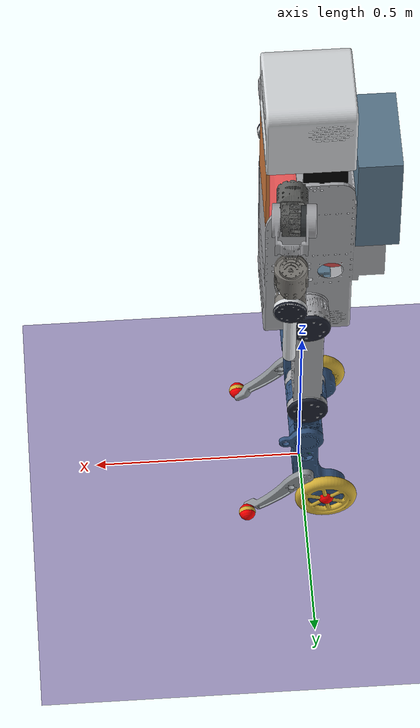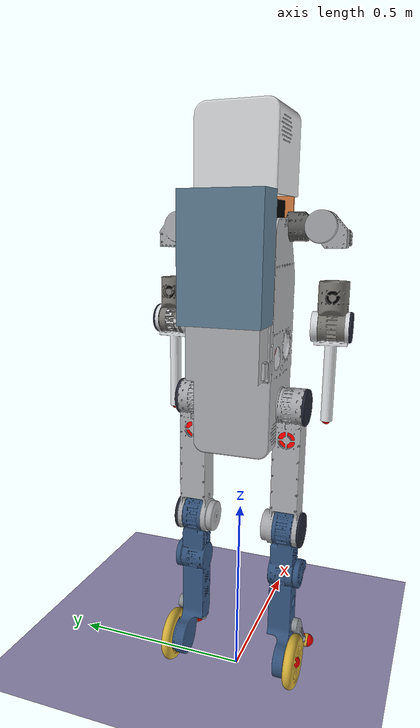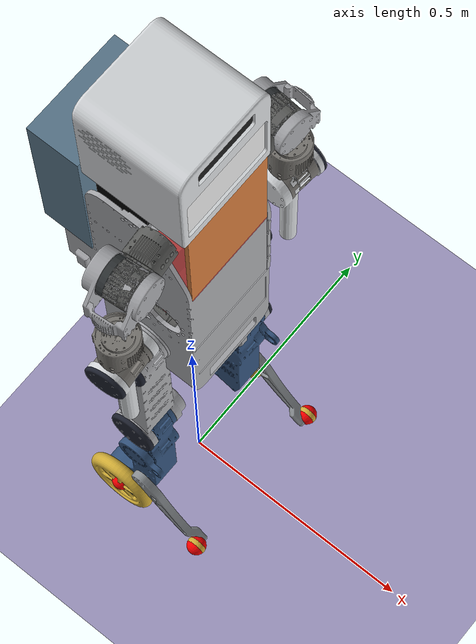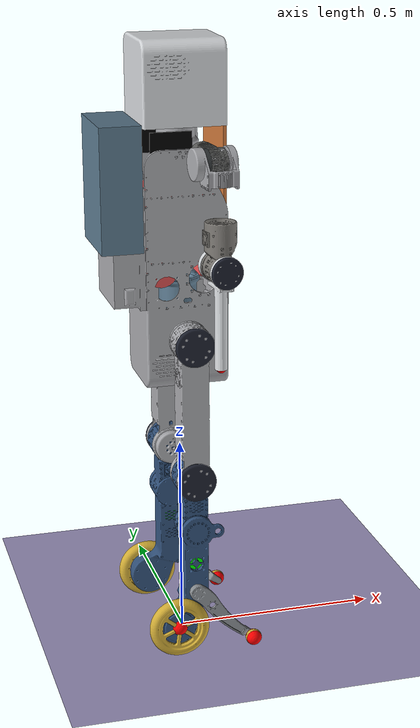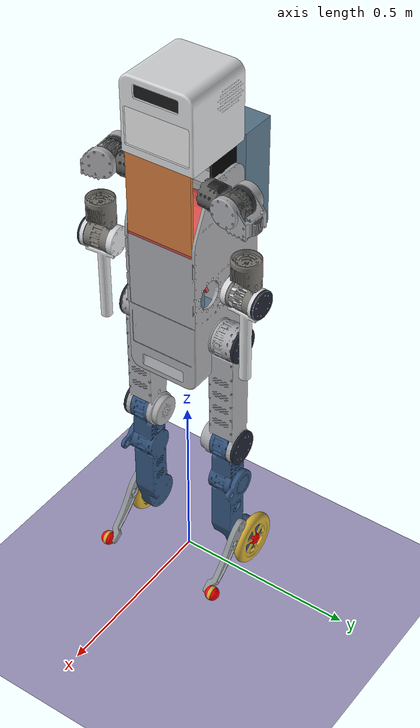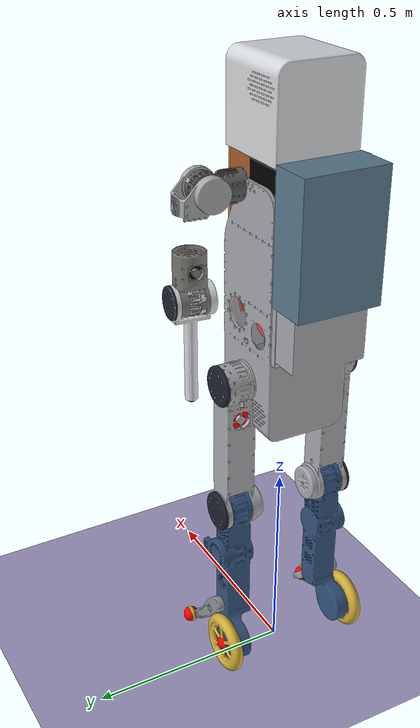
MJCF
<mujoco model="KIST MAHRU-WL with Battery">		<!-- 파일 이름 -->
	<compiler angle="radian" autolimits="true" meshdir="Meshes" texturedir="PNG"/>		<!-- xml 기본 설정 -->
	<option timestep="0.001" gravity="0 0 -9.81" tolerance="1e-08" cone="elliptic" jacobian="dense" solver="Newton"
					integrator="implicit" iterations="30"/>		<!-- mujoco sim 설정 -->
	<option>
		<flag override="enable" gravity="enable"/>
	</option>

	<visual>
		<global fovy="45" linewidth="2" glow="0.3"/>
		<quality shadowsize="4096" numslices="48"/>
		<map stiffness="50" stiffnessrot="100"/>
		<scale forcewidth="0.03" contactwidth="0.15" contactheight="0.1" connect="0.1" com="0.05" jointlength="0.25" jointwidth="0.05"
					 actuatorlength="0.5" actuatorwidth="0.3" framelength="1" framewidth="0.03"/>
		<rgba haze="0.6 0.8 0.9 1" force="1 0 0 0.5" com="0 0 1 1"/>
	</visual>

	<default>
		<geom contype="1" conaffinity="1" condim="3" material="MatLink"/>
		<joint limited="false" damping="2" armature="0.1" stiffness="0" frictionloss="0.2"/>
		<motor gear="1 0 0 0 0 0" ctrllimited="false" ctrlrange="-100 100"/>
	</default>

	<asset>
		<mesh name="Pelvis" file="base_link.STL"/>
		<mesh name="Torso" file="TOP.STL"/>
		<mesh name="Head" file="Head.STL"/>
		<mesh name="RA1" file="RA1.STL"/>
		<mesh name="RA2" file="RA2.STL"/>
		<mesh name="RA3" file="RA3.STL"/>
		<mesh name="RA4" file="RA4.STL"/>
		<mesh name="LA1" file="LA1.STL"/>
		<mesh name="LA2" file="LA2.STL"/>
		<mesh name="LA3" file="LA3.STL"/>
		<mesh name="LA4" file="LA4.STL"/>
		<mesh name="RL1" file="RL1.STL"/>
		<mesh name="RL2" file="RL2.STL"/>
		<mesh name="RL3" file="RL3.STL"/>
		<mesh name="RL4" file="RL4.STL"/>
		<mesh name="RW" file="RW.STL"/>
		<mesh name="LL1" file="LL1.STL"/>
		<mesh name="LL2" file="LL2.STL"/>
		<mesh name="LL3" file="LL3.STL"/>
		<mesh name="LL4" file="LL4.STL"/>
		<mesh name="LW" file="LW.STL"/>
		<mesh name="ToeWheel" file="ToeWheel.STL"/>
		<mesh name="AMCover" file="Cover.STL" scale="0.8 0.805 0.805"/>
		<mesh name="LMCover" file="Cover.STL" scale="1.005 1.005 1.005"/>

		<texture name="sky" type="skybox" builtin="gradient" width="512" height="512" rgb1="1 1 1" rgb2="0.6 0.8 1"/>
		<texture name="picdisp"  type="2d" builtin="none"    file="Face02.png"/>
		<texture name="picfloor" type="2d" builtin="none"    file="Marble-02.png"/>
		<texture name="texplane" type="2d" builtin="checker" width="512" height="512"
						 rgb1="0.8555 0.8516 0.7422" rgb2="0.4141 0.3516 0.8008" mark="edge" markrgb="1 1 1"/>

		<material name="MatGnd"   reflectance="0" specular="1" shininess="1" rgba="0 0.4 0.5 1"/>
		<material name="MatDisp"  texture="picdisp" emission="0.3" reflectance="0.1" shininess="0.5"/>
		<material name="MatLink"  reflectance="0.5" specular="1" shininess="0.3" rgba="0.5 0.5 0.5 1"/>
		<material name="MatFloor" texture="picfloor" reflectance="0.05" shininess="1" texrepeat="1 1" texuniform="true"/>
		<material name="MatPlane" texture="texplane" reflectance="0" texrepeat="1 1" texuniform="true"/>
	</asset>

	<worldbody>
		<!-- Light-->
		<light directional="true" pos=" 5 -5 5" dir="-0.5  0.5 -1" diffuse="0.3 0.3 0.3" specular="0.0 0.0 0.0" castshadow="false"/>
		<light directional="true" pos=" 5  5 5" dir="-0.5 -0.5 -1" diffuse="0.3 0.3 0.3" specular="0.0 0.0 0.0" castshadow="false"/>
		<light directional="true" pos="-5  5 5" dir=" 0.5 -0.5 -1" diffuse="0.3 0.3 0.3" specular="0.0 0.0 0.0" castshadow="false"/>
		<light directional="true" pos="-5 -5 5" dir=" 0.5  0.5 -1" diffuse="0.3 0.3 0.3" specular="0.0 0.0 0.0" castshadow="false"/>

		<!-- Ground -->
		<geom name="Ground" type="plane" pos="0 0 0" material="MatPlane" size="0 0 1" condim="3"/>

		<!-- BASE : Pelvis -->
		<body name="Pelvis" pos="0 0 0.8">
		<freejoint name ="Floating-Base"/>
			<inertial pos="-0.00067614 -5.55e-05 0.0714295" quat="0.706127 -0.0205059 -0.0182855 0.707552"
								mass="2.28058" diaginertia="0.00672353 0.00634586 0.00411024"/>
			<geom name="Pelvis" type="mesh" mesh="Pelvis" rgba="0.3555 0.4727 0.5547 1"/>	<!-- Titanium Blue -->

			<!-- UpperBody : Torso -->
			<body name="Torso" pos="0 0 0.15" euler="3.1416 0 0">
				<joint name="Torso_Y" pos="0 0 0" axis="0 0 1" range="-0.5 0.5" limited="true"/>
				<inertial pos="-0.0700627 -0.00059468 -0.24363" quat="0.697837 -0.107366 -0.0994596 0.701144"
									mass="14.6588" diaginertia="0.26711 0.217134 0.153951"/>
				<geom name="Torso" type="mesh" mesh="Torso" rgba="0.6563 0.6602 0.6758 1"/>	<!-- Metallic Silver -->
				<geom name="Head" type="mesh" mesh="Head" pos="0 0 -0.0022" rgba="0.8438 0.8555 0.8672 1"/>	<!-- Chrome Silver -->
				<geom name="Camera" type="box" pos="0.094 0 -0.526" euler="0 1.57 0" size="0.02 0.08 0.001" rgba="0.1 0.1 0.1 1"/>
				<geom name="Face" type="box" pos="0.094 0 -0.429" euler="0 1.57 -1.57" size="0.095 0.055 0.001" rgba="0.9 0.9 0.9 1" material="MatDisp"/>
				<geom name="Battery" type="box" pos="-0.154 0 -0.22" size="0.05 0.101 0.15" rgba="0.3555 0.4727 0.5547 1"/>	<!-- Titanium Blue -->
				<geom name="FU" type="box" pos="0.09505 0 -0.253" size="0.004 0.0921 0.11" rgba="0.8164 0.4727 0.2305 1"/>	<!-- Metallic Copper -->
				<geom name="FL" type="box" pos="0.062 0 -0.057" euler="0 -0.462 0" size="0.004 0.0925 0.06" rgba="0.8555 0.3047 0.3047 1"/>	<!-- Steel Red -->
				<geom type="cylinder" pos="0.009 0 -0.143" euler="1.57 0 0" size="0.09005 0.0925" rgba="0.8555 0.3047 0.3047 1"/>	<!-- Steel Red -->
				<geom name="BL" type="box" pos="-0.094 0 -0.05" size="0.005 0.0925 0.03" rgba="0.8555 0.3047 0.3047 1"/>	<!-- Steel Red -->
				<geom type="cylinder" pos="-0.06 0 -0.02" euler="1.57 0 0" size="0.039 0.0925" rgba="0.8555 0.3047 0.3047 1"/>	<!-- Steel Red -->
				<geom name="LB_Fan" type="box" pos="-0.033 -0.087 -0.31" size="0.05 0.002 0.04" rgba="0 0 0 1"/>
				<geom name="RB_Fan" type="box" pos="-0.033  0.087 -0.31" size="0.05 0.002 0.04" rgba="0 0 0 1"/>

				<!-- Right Arm -->
				<body name="RA1" pos="0.047556 0.17703 -0.29" euler="-1.570796 0.087266 0">
					<joint name="RArm_J1" pos="0 0 0" axis="0 0 1" limited="true" range="-3.14 3.14"/>
					<inertial pos="-0.00253009 0.00062386 -0.014022" quat="0.70804 0.0165299 0.040664 0.704807"
										mass="1.33852" diaginertia="0.00206694 0.00181764 0.00115994"/>
					<geom type="mesh" mesh="RA1" rgba="0.3594 0.3633 0.3555 1"/>	<!-- Gunmetal -->

					<body name="RA2" pos="0 0 0" euler="3.141592 1.570796 0">
						<joint name="RArm_J2" pos="0 0 0" axis="0 0 1" limited="true" range="-1.57 1.57"/>
						<inertial pos="0.0323144 0.0807497 0.00105962" quat="0.67607 0.680674 0.250737 -0.129394"
											mass="1.32899" diaginertia="0.00335677 0.00320867 0.00125121"/>
						<geom type="mesh" mesh="RA2" rgba="0.6563 0.6602 0.6758 1"/>	<!-- Metallic Silver -->
						<geom type="cylinder" pos="0 0 -0.025" size="0.035 0.006" rgba="0.1914 0.2070 0.2148 1"/>	<!-- Gunmetal Gray -->

						<body name="RA3" pos="0.035 0.12 0" euler="-1.570796 0 -1.570796">
							<joint name="RArm_J3" pos="0 0 0" axis="0 0 1" limited="true" range="-1 1"/>
							<inertial pos="6.983e-05 -0.00139846 0.100248" quat="0.999889 -0.0111503 0.00808679 0.0056701"
												mass="1.41642" diaginertia="0.00287566 0.00258677 0.00129787"/>
							<geom type="mesh" mesh="RA3" rgba="0.4766 0.4648 0.4453 1"/>	<!-- Metallic Titanium -->
							<geom name="RE_Fan" type="box" pos="-0.026 0 0.045" size="0.002 0.018 0.018" rgba="0 0 0 1"/>

							<body name="RA4" pos="0 0 0.12" euler="1.570796 0 0">
								<joint name="RArm_J4" pos="0 0 0" axis="0 0 1" limited="true" range="-1.8 0.05"/>
								<inertial pos="-0.00053779 0.0658718 0.00614697" quat="0.676625 0.734676 0.038169 -0.0311954"
													mass="0.325331" diaginertia="0.00221643 0.00204299 0.000338785"/>
								<geom name="RA" type="mesh" mesh="RA4" rgba="0.8438 0.8555 0.8672 1"/>	<!-- Chrome Silver -->
								<geom name="RECover" type="mesh" mesh="AMCover" pos="0 0 -0.041" euler="0 1.57 0" rgba="0.1133 0.1289 0.1797 1"/>
								<site name="RArm_EE" type="sphere" pos="0 0.24 0" size="0.012" rgba="1 0 0 1"/>
							</body>
						</body>
					</body>
				</body>	<!-- End of Right Arm -->

				<!-- Left Arm -->
				<body name="LA1" pos="0.047556 -0.17703 -0.29" euler="1.570796 0.087266 0">
					<joint name="LArm_J1" pos="0 0 0" axis="0 0 1" limited="true" range="-3.14 3.14"/>
					<inertial pos="-0.00253009 -0.00062386 -0.014022" quat="0.701945 0.0406307 0.0163936 0.710882"
										mass="1.33852" diaginertia="0.00206697 0.0018176 0.00115995"/>
					<geom type="mesh" mesh="LA1" rgba="0.3594 0.3633 0.3555 1"/>	<!-- Gunmetal -->

					<body name="LA2" pos="0 0 0" euler="0 1.570796 0">
						<joint name="LArm_J2" pos="0 0 0" axis="0 0 1" limited="true" range="-1.57 1.57"/>
						<inertial pos="-0.0323144 0.0807497 0.00105962" quat="0.67607 0.680674 -0.250737 0.129394"
											mass="1.32899" diaginertia="0.00335677 0.00320867 0.00125121"/>
						<geom type="mesh" mesh="LA2" rgba="0.6563 0.6602 0.6758 1"/>	<!-- Metallic Silver -->
						<geom type="cylinder" pos="0 0 -0.025" size="0.035 0.006" rgba="0.1914 0.2070 0.2148 1"/>	<!-- Gunmetal Gray -->

						<body name="LA3" pos="-0.035 0.12 0" euler="-1.570796 0 -1.570796">
							<joint name="LArm_J3" pos="0 0 0" axis="0 0 1" limited="true" range="-1 1"/>
							<inertial pos="-6.983e-05 0.00139846 0.100248" quat="0.999889 0.0111503 0.00808679 -0.0056701"
												mass="1.41642" diaginertia="0.00287566 0.00258677 0.00129787"/>
							<geom type="mesh" mesh="LA3" rgba="0.4766 0.4648 0.4453 1"/>	<!-- Metallic Titanium -->
							<geom name="LE_Fan" type="box" pos="-0.026 0 0.045" size="0.002 0.018 0.018" rgba="0 0 0 1"/>

							<body name="LA4" pos="0 0 0.12" euler="-1.570796 0 0">
								<joint name="LArm_J4" pos="0 0 0" axis="0 0 1" range="-0.05 1.7" limited="true"/>
								<inertial pos="-0.00053779 -0.0658718 0.00614697" quat="0.676625 0.734676 -0.038169 0.0311954"
													mass="0.325331" diaginertia="0.00221643 0.00204299 0.000338785"/>
								<geom name="LA" type="mesh" mesh="LA4" rgba="0.8438 0.8555 0.8672 1"/>	<!-- Chrome Silver -->
								<geom name="LECover" type="mesh" mesh="AMCover" pos="0 0 -0.041" euler="0 1.57 0" rgba="0.1133 0.1289 0.1797 1"/>
								<site name="LArm_EE" type="sphere" pos="0 -0.24 0" size="0.012" rgba="1 0 0 1"/>
							</body>
						</body>
					</body>
				</body>	<!-- End of Left Arm -->

			</body>	<!-- End of Torso -->

			<!-- Right Leg -->
			<body name="RL1" pos="0 -0.0405 0" euler="-1.570796 -1.570796 0">
				<joint name="RLeg_J1" pos="0 0 0" axis="0 0 1" limited="true" range="-0.1 1.57"/>
				<inertial pos="-0.00325492 8.807e-05 0.00943272" quat="0.70432 -0.0709841 -0.0605083 0.703728"
									mass="1.37909" diaginertia="0.00173372 0.00165486 0.00141238"/>
				<geom type="mesh" mesh="RL1" rgba="0.3594 0.3633 0.3555 1"/>	<!-- Gunmetal -->

				<body name="RL2" pos="-0.088 0 0" euler="0 1.570796 0">
					<joint name="RLeg_J2" pos="0 0 0" axis="0 0 1" limited="true" range="-1.57 0.5"/>
					<inertial pos="-5.823e-05 0.0700867 0.247412" quat="0.69211 0.72178 0.00345192 -0.00241462"
										mass="2.58606" diaginertia="0.0389232 0.0388284 0.00354663"/>
					<geom type="mesh" mesh="RL2" rgba="0.6563 0.6602 0.6758 1"/>	<!-- Metallic Silver -->
					<geom name="RHCover" type="mesh" mesh="LMCover" pos="0 0 -0.0345" euler="0 1.57 0" rgba="0.1133 0.1289 0.1797 1"/>
					<geom name="RKCover" type="mesh" mesh="LMCover" pos="0 0.34 -0.037" euler="0 1.57 0" rgba="0.1133 0.1289 0.1797 1"/>
					<geom name="RH_Fan" type="box" pos="-0.02 0.083 0" size="0.002 0.025 0.025" rgba="1 0 0 1"/>

					<body name="RL3" pos="0 0.34 0">
						<joint name="RLeg_J3" pos="0 0 0" axis="0 0 1" limited="true" range="0 1.7"/>
						<inertial pos="-0.00805944 0.139058 -0.00700815" quat="0.632223 0.643363 -0.344969 0.259564"
											mass="4.817" diaginertia="0.0979866 0.0951953 0.00577222"/>
						<geom type="mesh" mesh="RL3" rgba="0.1953 0.3203 0.4805 1"/>	<!-- Metallic Blue -->
						<geom name="RS_Fan" type="box" pos="0 0.22 -0.017" size="0.025 0.025 0.002" rgba="0 1 0 1"/>

						<body name="RL4" pos="0 0.292 -0.049" euler="3.141592 0 -0.77649698">
							<joint name="RLeg_J4" pos="0 0 0" axis="0 0 1" limited="true" range="-0.1 1"/>
							<inertial pos="0.0971152 -0.00115539 -0.00834587" quat="0.633054 0.29 0.656564 0.289942"
												mass="0.287805" diaginertia="0.00186745 0.00186698 5.8451e-05"/>
							<geom name="RTW" type="mesh" mesh="RL4" rgba="0.5508 0.5703 0.5859 1"/>	<!-- Dark Steel -->
							<geom name="RToeWheel" type="mesh" mesh="ToeWheel" pos="0.19678 0 0" euler ="0 1.570796 0"
										rgba="0.8281 0.6836 0.2148 1"/>	<!-- Metallic Gold -->
							<site name="RToe" type="sphere" pos="0.19678 0 0" size="0.02" rgba="1 0 0 1"/>
						</body>

						<body name="RW" pos="-0.05 0.375 -0.049">
							<joint name="RWheel" pos="0 0 0" axis="0 0 1"/>
							<inertial pos="0 0 -0.0010293" quat="0.5 0.5 -0.5 0.5" mass="0.440501" diaginertia="0.00149999 0.00077736 0.00077736"/>
							<geom name="RWheel" type="mesh" mesh="RW" rgba="0.8281 0.6836 0.2148 1"/>	<!-- Metallic Gold -->
							<site name="RWheel_C" type="sphere" pos="0 0 0" size="0.02" rgba="1 0 0 1"/>
						</body>
					</body>
				</body>
			</body>	<!-- End of Right Leg -->

			<!-- Left Leg -->
			<body name="LL1" pos="0 0.0405 0" euler="-1.570796 -1.570796 0">
				<joint name="LLeg_J1" pos="0 0 0" axis="0 0 1" limited="true" range="-1.57 0.1"/>
				<inertial pos="0.00325492 8.807e-05 0.00943272" quat="0.70432 0.0709841 0.0605083 0.703728"
									mass="1.37909" diaginertia="0.00173372 0.00165486 0.00141238"/>
				<geom type="mesh" mesh="LL1" rgba="0.3594 0.3633 0.3555 1"/>	<!-- Gunmetal -->

				<body name="LL2" pos="0.088 0 0" euler="3.141592 -1.570796 0">
					<joint name="LLeg_J2" pos="0 0 0" axis="0 0 1" limited="true" range="-0.5 1.57"/>
					<inertial pos="-5.823e-05 -0.0700867 0.247412" quat="0.69211 0.72178 -0.00345192 0.00241462"
										mass="2.58606" diaginertia="0.0389232 0.0388284 0.00354663"/>
					<geom type="mesh" mesh="LL2" rgba="0.6563 0.6602 0.6758 1"/>	<!-- Metallic Silver -->
					<geom name="LHCover" type="mesh" mesh="LMCover" pos="0 0 -0.0345" euler="0 1.57 0" rgba="0.1133 0.1289 0.1797 1"/>
					<geom name="LKCover" type="mesh" mesh="LMCover" pos="0 -0.34 -0.037" euler="0 1.57 0" rgba="0.1133 0.1289 0.1797 1"/>
					<geom name="LH_Fan" type="box" pos="-0.02 -0.083 0" size="0.002 0.025 0.025" rgba="1 0 0 1"/>

					<body name="LL3" pos="0 -0.34 0">
						<joint name="LLeg_J3" pos="0 0 0" axis="0 0 1" limited="true" range="-1.7 0"/>
						<inertial pos="-0.00805944 -0.139058 -0.00700815" quat="0.344969 0.259564 -0.632223 0.643363"
											mass="4.817" diaginertia="0.0979866 0.0951953 0.00577222"/>
						<geom type="mesh" mesh="LL3" rgba="0.1953 0.3203 0.4805 1"/>	<!-- Metallic Blue -->
						<geom name="LS_Fan" type="box" pos="0 -0.22 -0.017" size="0.025 0.025 0.002" rgba="0 1 0 1"/>

						<body name="LL4" pos="0 -0.292 -0.049" euler="3.141592 0 0.77649698">
							<joint name="LLeg_J4" pos="0 0 0" axis="0 0 1" limited="true" range="-1 0.1"/>
							<inertial pos="0.0971152 0.00115539 -0.00834587" quat="0.289942 0.656564 0.29 0.633054"
												mass="0.287805" diaginertia="0.00186745 0.00186698 5.8451e-05"/>
							<geom name="LTW" type="mesh" mesh="LL4" rgba="0.5508 0.5703 0.5859 1"/>	<!-- Dark Steel -->
							<geom name="LToeWheel" type="mesh" mesh="ToeWheel" pos="0.19678 0 0" euler ="0 1.570796 0"
										rgba="0.8281 0.6836 0.2148 1"/>	<!-- Metallic Gold -->
							<site name="LToe" type="sphere" pos="0.19678 0 0" size="0.02" rgba="1 0 0 1"/>
						</body>

						<body name="LW" pos="-0.05 -0.375 -0.049" euler="3.141592 0 0">
							<joint name="LWheel" pos="0 0 0" axis="0 0 1"/>
							<inertial pos="0 0 0.0010293" quat="0.5 0.5 -0.5 0.5" mass="0.440501" diaginertia="0.00149999 0.00077736 0.00077736"/>
							<geom name="LWheel" type="mesh" mesh="LW" rgba="0.8281 0.6836 0.2148 1"/>	<!-- Metallic Gold -->
							<site name="LWheel_C" type="sphere" pos="0 0 0" size="0.02" rgba="1 0 0 1"/>
						</body>
					</body>
				</body>
			</body>	<!-- End of Left Leg -->

		</body>	<!-- End of Pelvis -->

	</worldbody>

	<actuator>
		<motor name="Torso-Y" ctrllimited="false" gear="1 0 0 0 0 0" joint="Torso_Y"/>

		<motor name="RLeg-J1" ctrllimited="false" gear="1 0 0 0 0 0" joint="RLeg_J1"/>
		<motor name="RLeg-J2" ctrllimited="false" gear="1 0 0 0 0 0" joint="RLeg_J2"/>
		<motor name="RLeg-J3" ctrllimited="false" gear="1 0 0 0 0 0" joint="RLeg_J3"/>
		<motor name="RLeg-J4" ctrllimited="false" gear="1 0 0 0 0 0" joint="RLeg_J4"/>
		<velocity name="R-Wheel" joint="RWheel" kv="200"/>

		<motor name="LLeg-J1" ctrllimited="false" gear="1 0 0 0 0 0" joint="LLeg_J1"/>
		<motor name="LLeg-J2" ctrllimited="false" gear="1 0 0 0 0 0" joint="LLeg_J2"/>
		<motor name="LLeg-J3" ctrllimited="false" gear="1 0 0 0 0 0" joint="LLeg_J3"/>
		<motor name="LLeg-J4" ctrllimited="false" gear="1 0 0 0 0 0" joint="LLeg_J4"/>
		<velocity name="L-Wheel" joint="LWheel" kv="200"/>

		<motor name="RArm-J1" ctrllimited="false" gear="1 0 0 0 0 0" joint="RArm_J1"/>
		<motor name="RArm-J2" ctrllimited="false" gear="1 0 0 0 0 0" joint="RArm_J2"/>
		<motor name="RArm-J3" ctrllimited="false" gear="1 0 0 0 0 0" joint="RArm_J3"/>
		<motor name="RArm-J4" ctrllimited="false" gear="1 0 0 0 0 0" joint="RArm_J4"/>

		<motor name="LArm-J1" ctrllimited="false" gear="1 0 0 0 0 0" joint="LArm_J1"/>
		<motor name="LArm-J2" ctrllimited="false" gear="1 0 0 0 0 0" joint="LArm_J2"/>
		<motor name="LArm-J3" ctrllimited="false" gear="1 0 0 0 0 0" joint="LArm_J3"/>
		<motor name="LArm-J4" ctrllimited="false" gear="1 0 0 0 0 0" joint="LArm_J4"/>
	</actuator>

	<contact>
		<exclude body1="RL4" body2="RW"/>
		<exclude body1="LL4" body2="LW"/>
		<pair geom1="Ground" geom2="RToeWheel" condim="1"/>
		<pair geom1="Ground" geom2="LToeWheel" condim="1"/>
		<pair geom1="Ground" geom2="RWheel" condim="3" friction="1 5 0.05 0.1 0.1"/>
		<pair geom1="Ground" geom2="LWheel" condim="3" friction="1 5 0.05 0.1 0.1"/>
	</contact>

</mujoco>
